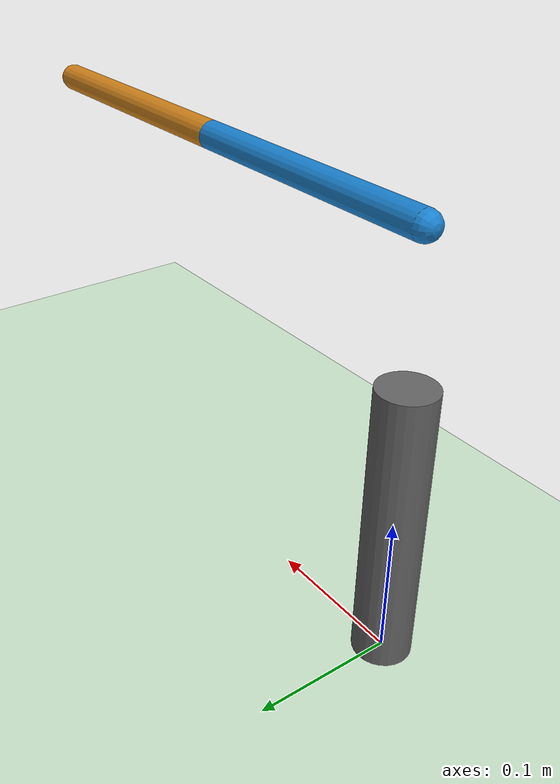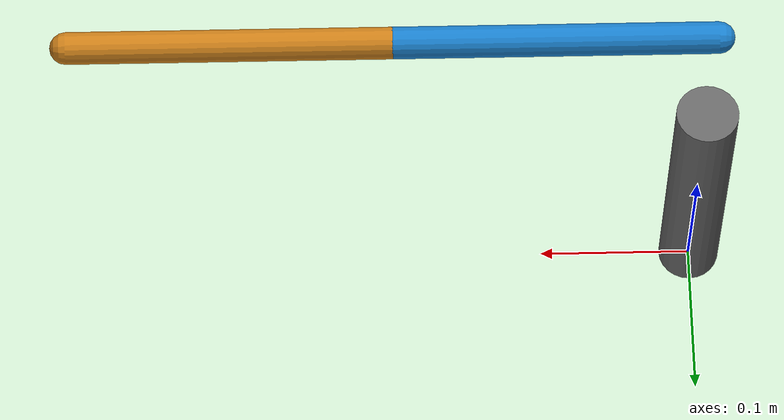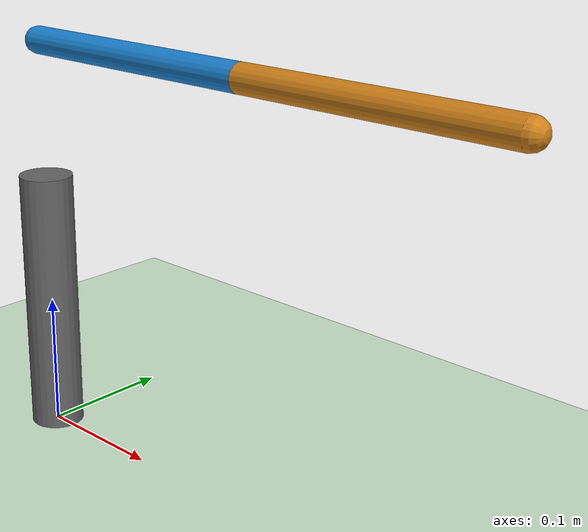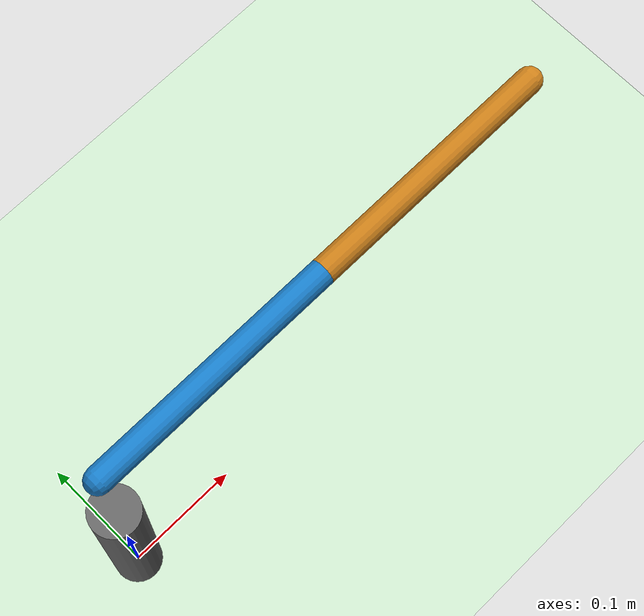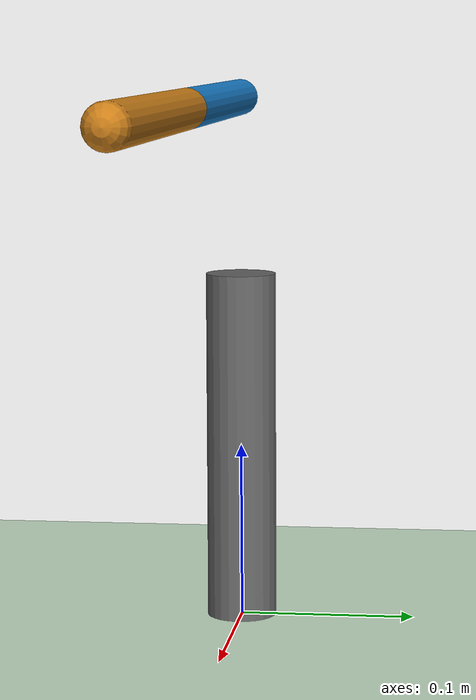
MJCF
<mujoco model="tendon_soft_constraint">
  <option gravity="0 0 -9.81"/>

  <worldbody>
    <geom type="plane" size="5 5 0.1" rgba="0.8 0.9 0.8 1"/>

    <!-- Trụ cố định -->
    <body name="base" pos="0 0 0.1">
      <geom type="cylinder" size="0.02 0.1" rgba="0.4 0.4 0.4 1"/>

      <body name="link1" pos="0 0 0.2">
        <joint name="hinge1" type="hinge" axis="0 0 1" limited="true" range="-90 90"/>
        <geom type="capsule" fromto="0 0 0 0.2 0 0" size="0.01" rgba="0.1 0.5 0.8 1"/>

        <body name="link2" pos="0.2 0 0">
          <joint name="hinge2" type="hinge" axis="0 0 1" limited="true" range="-90 90"/>
          <geom type="capsule" fromto="0 0 0 0.2 0 0" size="0.01" rgba="0.8 0.5 0.1 1"/>

          <!-- Site tại đầu link2 -->
          <site name="tendon_end" pos="0.2 0 0" size="0.005" rgba="0 0 1 1"/>
        </body>

        <!-- Site tại gốc link1 -->
        <site name="tendon_start" pos="0 0 0" size="0.005" rgba="1 0 0 1"/>
      </body>
    </body>
  </worldbody>

  <sensor>
    <tendonactuatorfrc tendon="cable_tendon"/>
  </sensor>

  <actuator>
    <motor joint="hinge1" ctrlrange="-1 1" ctrllimited="true"/>
  </actuator>

  <tendon>
    <spatial name="cable_tendon"
             limited="true" range="0.2 0.6"
             width="0.002"
             springlength="0.4"
             stiffness="100"
             damping="2">
      <site site="tendon_start"/>
      <site site="tendon_end"/>
    </spatial>
  </tendon>
</mujoco>
